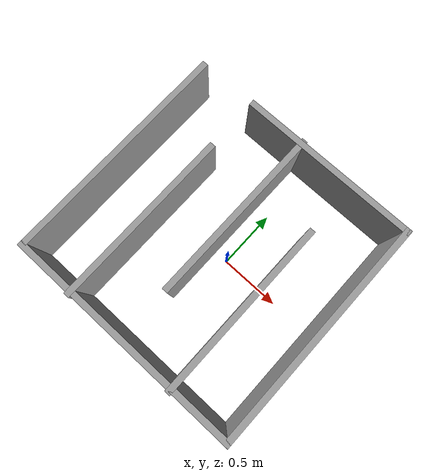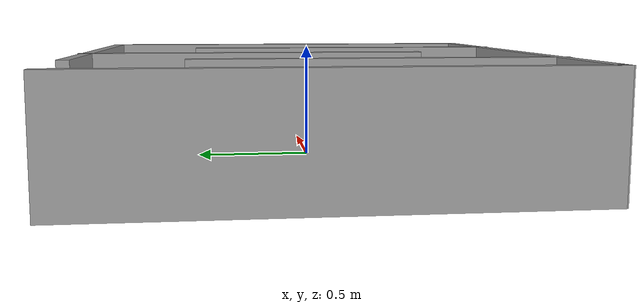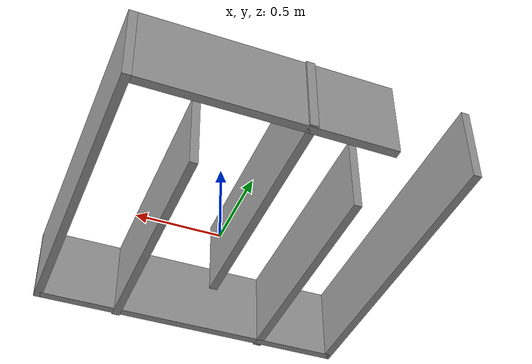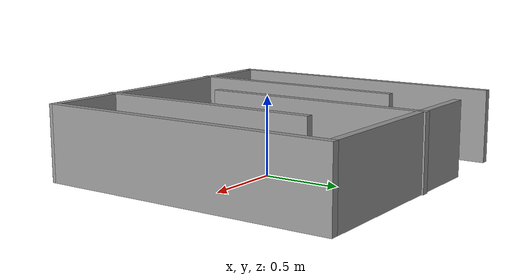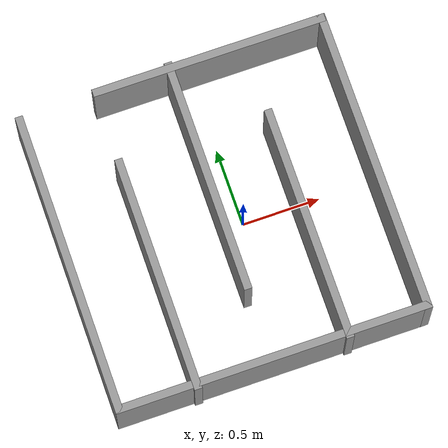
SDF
<?xml version='1.0'?>
<sdf version='1.6'>
  <model name='very_basic_maze'>
    <pose frame=''>-0.132048 0.011 0 0 -0 0</pose>
    <link name='Wall_13'>
      <collision name='Wall_13_Collision'>
        <geometry>
          <box>
            <size>2 0.05 0.48</size>
          </box>
        </geometry>
        <pose frame=''>0 0 0.24 0 -0 0</pose>
      </collision>
      <visual name='Wall_13_Visual'>
        <pose frame=''>0 0 0.24 0 -0 0</pose>
        <geometry>
          <box>
            <size>2 0.05 0.48</size>
          </box>
        </geometry>
        <material>
          <script>
            <uri>file://media/materials/scripts/gazebo.material</uri>
            <name>Gazebo/Grey</name>
          </script>
          <ambient>1 1 1 1</ambient>
        </material>
        <meta>
          <layer>0</layer>
        </meta>
      </visual>
      <pose frame=''>-0.001076 -0.950474 0 0 -0 0</pose>
    </link>
    <link name='Wall_15'>
      <collision name='Wall_15_Collision'>
        <geometry>
          <box>
            <size>1.95396 0.05 0.48</size>
          </box>
        </geometry>
        <pose frame=''>0 0 0.24 0 -0 0</pose>
      </collision>
      <visual name='Wall_15_Visual'>
        <pose frame=''>0 0 0.24 0 -0 0</pose>
        <geometry>
          <box>
            <size>1.95396 0.05 0.48</size>
          </box>
        </geometry>
        <material>
          <script>
            <uri>file://media/materials/scripts/gazebo.material</uri>
            <name>Gazebo/Grey</name>
          </script>
          <ambient>1 1 1 1</ambient>
        </material>
        <meta>
          <layer>0</layer>
        </meta>
      </visual>
      <pose frame=''>0.974986 0.001263 0 0 -0 -1.57191</pose>
    </link>
    <link name='Wall_18'>
      <collision name='Wall_18_Collision'>
        <geometry>
          <box>
            <size>1.5 0.05 0.48</size>
          </box>
        </geometry>
        <pose frame=''>0 0 0.24 0 -0 0</pose>
      </collision>
      <visual name='Wall_18_Visual'>
        <pose frame=''>0 0 0.24 0 -0 0</pose>
        <geometry>
          <box>
            <size>1.5 0.05 0.48</size>
          </box>
        </geometry>
        <material>
          <script>
            <uri>file://media/materials/scripts/gazebo.material</uri>
            <name>Gazebo/Grey</name>
          </script>
          <ambient>1 1 1 1</ambient>
        </material>
        <meta>
          <layer>0</layer>
        </meta>
      </visual>
      <pose frame=''>0.246048 0.953 0 0 -0 0</pose>
    </link>
    <link name='Wall_20'>
      <collision name='Wall_20_Collision'>
        <geometry>
          <box>
            <size>1.5 0.05 0.48</size>
          </box>
        </geometry>
        <pose frame=''>0 0 0.24 0 -0 0</pose>
      </collision>
      <visual name='Wall_20_Visual'>
        <pose frame=''>0 0 0.24 0 -0 0</pose>
        <geometry>
          <box>
            <size>1.5 0.05 0.48</size>
          </box>
        </geometry>
        <material>
          <script>
            <uri>file://media/materials/scripts/gazebo.material</uri>
            <name>Gazebo/Grey</name>
          </script>
          <ambient>1 1 1 1</ambient>
        </material>
        <meta>
          <layer>0</layer>
        </meta>
      </visual>
      <pose frame=''>-0.488952 -0.24 0 0 -0 -1.5708</pose>
    </link>
    <link name='Wall_22'>
      <collision name='Wall_22_Collision'>
        <geometry>
          <box>
            <size>1.5 0.05 0.48</size>
          </box>
        </geometry>
        <pose frame=''>0 0 0.24 0 -0 0</pose>
      </collision>
      <visual name='Wall_22_Visual'>
        <pose frame=''>0 0 0.24 0 -0 0</pose>
        <geometry>
          <box>
            <size>1.5 0.05 0.48</size>
          </box>
        </geometry>
        <material>
          <script>
            <uri>file://media/materials/scripts/gazebo.material</uri>
            <name>Gazebo/Grey</name>
          </script>
          <ambient>1 1 1 1</ambient>
        </material>
        <meta>
          <layer>0</layer>
        </meta>
      </visual>
      <pose frame=''>-0.008952 0.24 0 0 -0 1.5708</pose>
    </link>
    <link name='Wall_24'>
      <collision name='Wall_24_Collision'>
        <geometry>
          <box>
            <size>1.5 0.05 0.48</size>
          </box>
        </geometry>
        <pose frame=''>0 0 0.24 0 -0 0</pose>
      </collision>
      <visual name='Wall_24_Visual'>
        <pose frame=''>0 0 0.24 0 -0 0</pose>
        <geometry>
          <box>
            <size>1.5 0.05 0.48</size>
          </box>
        </geometry>
        <material>
          <script>
            <uri>file://media/materials/scripts/gazebo.material</uri>
            <name>Gazebo/Grey</name>
          </script>
          <ambient>1 1 1 1</ambient>
        </material>
        <meta>
          <layer>0</layer>
        </meta>
      </visual>
      <pose frame=''>0.471048 -0.24 0 0 -0 -1.5708</pose>
    </link>
    <link name='Wall_8'>
      <collision name='Wall_8_Collision'>
        <geometry>
          <box>
            <size>1.93068 0.05 0.48</size>
          </box>
        </geometry>
        <pose frame=''>0 0 0.24 0 -0 0</pose>
      </collision>
      <visual name='Wall_8_Visual'>
        <pose frame=''>0 0 0.24 0 -0 0</pose>
        <geometry>
          <box>
            <size>1.93068 0.05 0.48</size>
          </box>
        </geometry>
        <material>
          <script>
            <uri>file://media/materials/scripts/gazebo.material</uri>
            <name>Gazebo/Grey</name>
          </script>
          <ambient>1 1 1 1</ambient>
        </material>
        <meta>
          <layer>0</layer>
        </meta>
      </visual>
      <pose frame=''>-0.976076 -0.005136 0 0 -0 -1.5708</pose>
    </link>
    <static>1</static>
  </model>
</sdf>
